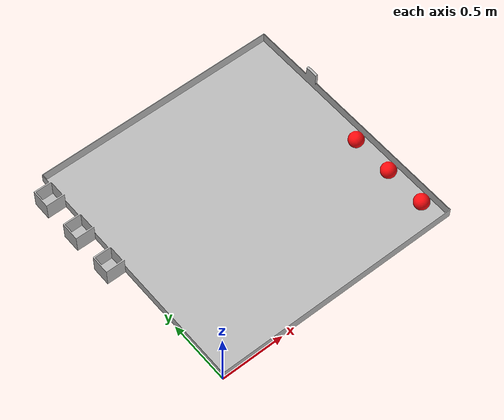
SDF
<?xml version='1.0'?>
<sdf version='1.7'>
  <model name='robolympics_circuit'>
    <static>true</static>
    <pose relative_to='world'>0 0 0 0 0 0</pose>
    <link name='link'>
      <inertial>
        <mass>80</mass>
        <inertia>
          <ixx>0.166667</ixx>
          <ixy>0</ixy>
          <ixz>0</ixz>
          <iyy>0.166667</iyy>
          <iyz>0</iyz>
          <izz>0.166667</izz>
        </inertia>
      </inertial>
      <self_collide>1</self_collide>
      <visual name='visual'>
        <cast_shadows>0</cast_shadows>
        <geometry>
          <mesh>
            <scale>1.0 1.0 1.0</scale>
            <uri>model://robolympics_circuit/meshes/robolympics_config_0.dae</uri>
          </mesh>
        </geometry>
      </visual>
      <collision name='collision'>
        <geometry>
          <mesh>
            <scale>1.0 1.0 1.0</scale>
            <uri>model://robolympics_circuit/meshes/robolympics_config_0.dae</uri>
          </mesh>
        </geometry>
        <surface>
          <friction>
            <ode>
              <mu>1</mu>
              <mu2>1</mu2>
              <fdir1>0 0 0</fdir1>
              <slip1>0</slip1>
              <slip2>0</slip2>
            </ode>
            <torsional>
              <coefficient>1</coefficient>
              <patch_radius>0</patch_radius>
              <surface_radius>0</surface_radius>
              <use_patch_radius>1</use_patch_radius>
              <ode>
                <slip>0</slip>
              </ode>
            </torsional>
          </friction>
          <contact>
            <collide_without_contact>0</collide_without_contact>
            <collide_without_contact_bitmask>1</collide_without_contact_bitmask>
            <collide_bitmask>1</collide_bitmask>
            <ode>
              <soft_cfm>0</soft_cfm>
              <soft_erp>0.2</soft_erp>
              <kp>1e+13</kp>
              <kd>1</kd>
              <max_vel>0.01</max_vel>
              <min_depth>0</min_depth>
            </ode>
          </contact>
        </surface>
      </collision>
    </link>
  </model>
</sdf>
